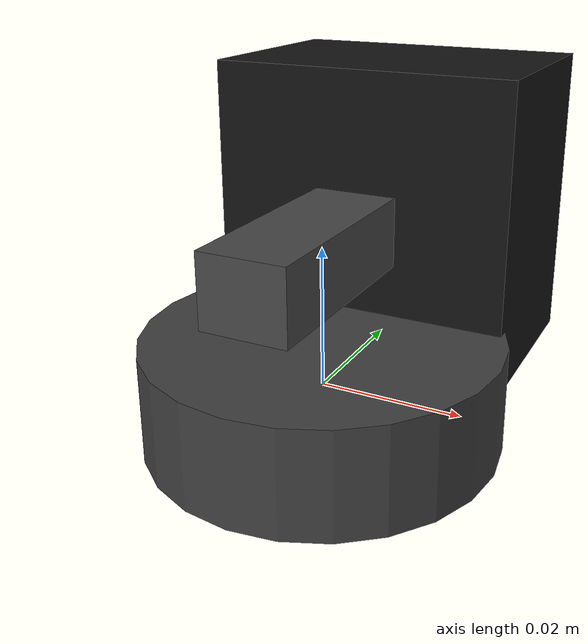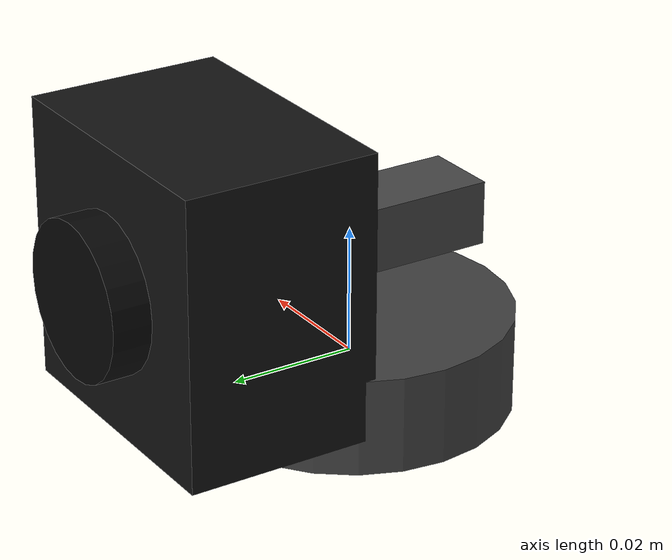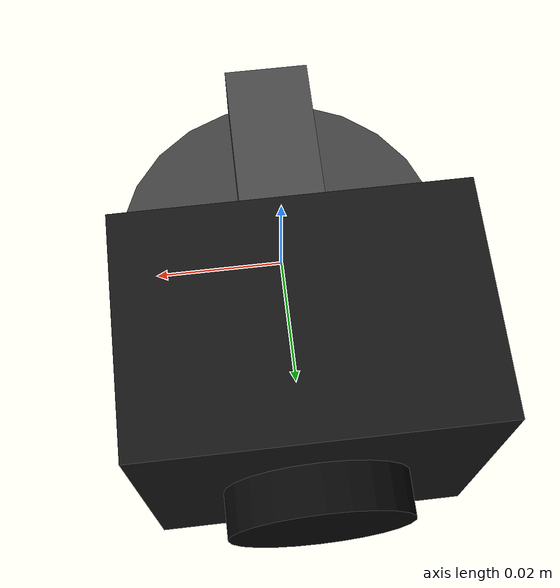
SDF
<?xml version="1.0" encoding="UTF-8"?>
<sdf version="1.9">
  <model name="boson_camera">
    <static>true</static>

    <!-- ── Pan base (horizontal rotation axis) ────────────────────────── -->
    <link name="gimbal_pan">
      <visual name="vis_pan_base">
        <geometry>
          <cylinder><radius>0.025</radius><length>0.015</length></cylinder>
        </geometry>
        <material>
          <ambient>0.25 0.25 0.25 1</ambient>
          <diffuse>0.25 0.25 0.25 1</diffuse>
        </material>
      </visual>
    </link>

    <!-- ── Tilt arm (vertical rotation axis) ──────────────────────────── -->
    <link name="gimbal_tilt">
      <pose>0 0 0.020 0 0 0</pose>
      <visual name="vis_tilt_arm">
        <geometry>
          <box><size>0.012 0.040 0.010</size></box>
        </geometry>
        <material>
          <ambient>0.28 0.28 0.28 1</ambient>
          <diffuse>0.28 0.28 0.28 1</diffuse>
        </material>
      </visual>
    </link>

    <!-- ── Camera body ─────────────────────────────────────────────────── -->
    <link name="camera_link">
      <!-- Mount slightly forward of tilt axis -->
      <pose>0 0.025 0.020 0 0 0</pose>

      <collision name="col_body">
        <geometry>
          <box><size>0.044 0.030 0.044</size></box>
        </geometry>
      </collision>

      <!-- Camera housing: small matte-black box -->
      <visual name="vis_body">
        <geometry>
          <box><size>0.044 0.030 0.044</size></box>
        </geometry>
        <material>
          <!-- Matte black — FLIR Boson+ housing -->
          <ambient>0.05 0.05 0.05 1</ambient>
          <diffuse>0.08 0.08 0.08 1</diffuse>
          <specular>0.02 0.02 0.02 1</specular>
        </material>
      </visual>

      <!-- Lens barrel (front face) -->
      <visual name="vis_lens">
        <pose>0 0.017 0 1.5707 0 0</pose>
        <geometry>
          <cylinder><radius>0.012</radius><length>0.008</length></cylinder>
        </geometry>
        <material>
          <ambient>0.03 0.03 0.03 1</ambient>
          <diffuse>0.03 0.03 0.03 1</diffuse>
          <specular>0.5 0.5 0.5 1</specular>
        </material>
      </visual>

    </link>

  </model>
</sdf>
